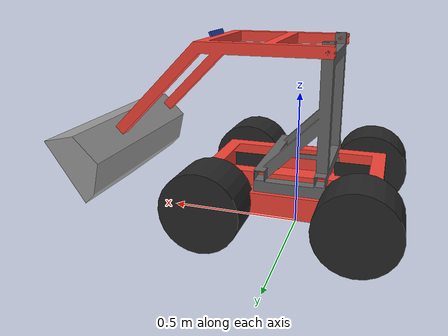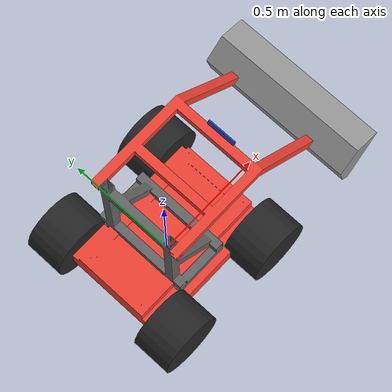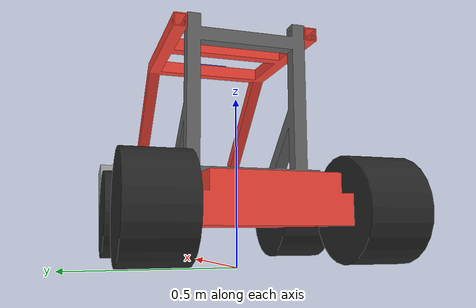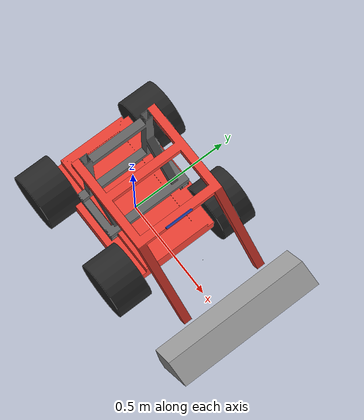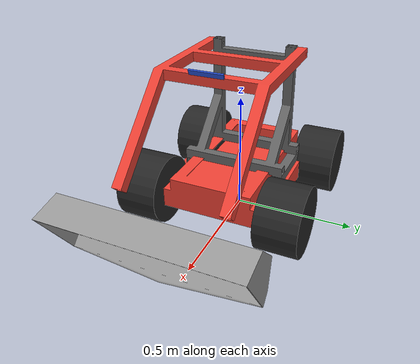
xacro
<?xml version="1.0"?>
<robot name="emcee" xmlns:xacro="http://www.ros.org/wiki/xacro">
  <xacro:property name="PI" value="3.1415926535897931"/>

  <xacro:property name="dummy_inertia" value="1e-09"/>

  <xacro:property name="mount_spacing" value="0.120"/>

  <material name="dark_grey"><color rgba="0.2 0.2 0.2 1.0"/></material>
  <material name="light_grey"><color rgba="0.4 0.4 0.4 1.0"/></material>
  <material name="stl"><color rgba="0.8 0.8 0.0 1.0"/></material>
  <material name="red"><color rgba="0.95 0.26 0.21 1.0"/></material>
  <material name="black"><color rgba="0.15 0.15 0.15 1.0"/></material>
  <material name="green"><color rgba="0 1 0 1"/></material>
  <material name="invisible"><color rgba="0 0 0 0"/></material>

  <xacro:property name="chassis_height" value="0.136"/>
  <xacro:property name="chassis_width" value="0.4731"/>
  <xacro:property name="chassis_length" value="0.627"/>

  <xacro:property name="sled_hoz_width" value="0.442"/>
  <xacro:property name="sled_hoz_length" value="0.245"/>
  <xacro:property name="sled_hoz_height" value="0.0405"/>

  <xacro:property name="sled_ver_width" value="0.350"/>
  <xacro:property name="sled_ver_length" value="0.0405"/>
  <xacro:property name="sled_ver_height" value="0.425"/>

  <xacro:property name="arm_upper_width" value="0.429"/>
  <xacro:property name="arm_upper_length" value="0.452"/>
  <xacro:property name="arm_upper_height" value="0.0405"/>

  <xacro:property name="arm_angle" value="2.356194490192345"/> <!-- 135 degrees -->

  <xacro:property name="arm_lower_width" value="0.429"/>
  <xacro:property name="arm_lower_length" value="0.440"/>
  <xacro:property name="arm_lower_height" value="0.0405"/>

  <!-- TODO: measure these -->
  <xacro:property name="wheel_base" value="0.503"/>
  <xacro:property name="wheel_track" value="0.575"/>
  <xacro:property name="wheel_radius" value="0.14"/>
  <xacro:property name="wheel_width" value="0.17"/>
  <!-- not sure about this one -->
  <xacro:property name="wheel_height" value="0.047625"/>

  <xacro:macro name="wheel" params="prefix reflect *joint_pose">
    <link name="${prefix}_wheel_link">
      <visual>
        <origin xyz="0 0 0" rpy="${PI/2} 0 0"/>
        <geometry>
          <cylinder radius="${wheel_radius}" length="${wheel_width}"/>
        </geometry>
        <material name="black"/>
      </visual>
      <collision>
        <origin xyz="0 0 0" rpy="${PI/2} 0 0"/>
        <geometry>
          <cylinder radius="${wheel_radius}" length="${wheel_width}"/>
        </geometry>
      </collision>
      <inertial>
        <origin xyz="0 0 0" rpy="0 0 0"/>
        <mass value="8.6"/>
        <!-- moment of inertia of a cylinder https://en.wikipedia.org/wiki/List_of_moments_of_inertia#List_of_3D_inertia_tensors -->
        <inertia ixx="0.0785782304" ixy="0" ixz="0" iyy="0.0785782304" iyz="0" izz="0.1051404359"/>
      </inertial>
    </link>

    <gazebo reference="${prefix}_wheel_link">
      <!-- TODO: set these constants. They are just taken from urdf_tutorial. 09 -->
      <mu1 value="5"/>
      <mu2 value="5"/>
      <material>Gazebo/DarkGrey</material>
    </gazebo>

    <joint name="${prefix}_wheel" type="continuous">
      <parent link="chassis"/>
      <child link="${prefix}_wheel_link"/>
      <xacro:insert_block name="joint_pose"/>
      <axis xyz="0 ${reflect} 0"/>
    </joint>

    <transmission name="${prefix}_wheel_trans">
      <type>transmission_interface/SimpleTransmission</type>
      <joint name="${prefix}_wheel">
        <hardwareInterface>VelocityJointInterface</hardwareInterface>
      </joint>
      <actuator name="${prefix}_actuator">
        <mechanicalReduction>1</mechanicalReduction>
      </actuator>
    </transmission>
  </xacro:macro>

  <link name="base_link"></link>
  <joint name="chassis_base_joint" type="fixed">
    <parent link="base_link"/>
    <child link="chassis"/>
    <origin xyz="0 0 ${(chassis_height/2)+wheel_radius-wheel_height}"/>
  </joint>

  <link name="chassis">
    <visual>
      <origin xyz="0 0 0"/>
      <geometry>
          <mesh filename="package://emcee_description/meshes/visual/chassis.dae"/>
      </geometry>
      <material name="red"/>
    </visual>
    <collision>
      <origin xyz="0 0 0"/>
      <geometry>
        <box size="${chassis_length} ${chassis_width} ${chassis_height}"/>
      </geometry>
    </collision>
    <inertial>
      <origin xyz="0 0 0" rpy="0 0 0"/>
      <mass value="3.05"/>
      <inertia ixx="0.28" ixy="0.00" ixz="0.00" iyy="0.42" iyz="0.00" izz="0.17"/>
    </inertial>
  </link>

  <xacro:wheel prefix="left_front" reflect="1">
    <origin xyz="${wheel_base/2} ${wheel_track/2} 0" rpy="0 0 0"/>
  </xacro:wheel>
  <xacro:wheel prefix="left_rear" reflect="1">
      <origin xyz="${-wheel_base/2} ${wheel_track/2} 0" rpy="0 0 0"/>
  </xacro:wheel>
  <xacro:wheel prefix="right_front" reflect="-1">
      <origin xyz="${wheel_base/2} ${-wheel_track/2} 0" rpy="${PI} 0 0"/>
  </xacro:wheel>
  <xacro:wheel prefix="right_rear" reflect="-1">
    <origin xyz="${-wheel_base/2} ${-wheel_track/2} 0" rpy="${PI} 0 0"/>
  </xacro:wheel>

  <link name="sled_hoz">
    <visual>
      <geometry>
          <mesh filename="package://emcee_description/meshes/visual/sled.dae"/>
      </geometry>
      <origin xyz="0 0 0" rpy="0 0 0"/>
      <material name="light_grey"/>
    </visual>
    <collision>
      <origin xyz="0 0 0"/>
      <geometry>
        <box size="${sled_hoz_length} ${sled_hoz_width} ${sled_hoz_height}"/>
      </geometry>
    </collision>
    <inertial>
      <origin xyz="0 0 0" rpy="0 0 0"/>
      <mass value="3.0"/>

      <!-- izz="-0.28" iyy="1.00" iyz="-0.96" ixx="0.96" ixy="0. -->
    <inertia ixx="0.08" ixy="0.00" ixz="-0.01" iyy="0.06" iyz="0.00" izz="0.04"/>
    </inertial>
  </link>

  <joint name="sled_joint" type="prismatic">
    <parent link="chassis"/>
    <child link="sled_hoz"/>
    <axis rpy="0 0 0" xyz="1 0 0"/>
    <dynamics damping="100" friction="1"/>
    <limit effort="1000" lower="${-(chassis_length/2)+(sled_hoz_length/2)}" upper="${(chassis_length/2)-(sled_hoz_length/2)}" velocity="0.1"/>
    <origin rpy="0 0 0" xyz="0 0 ${chassis_height/2 + sled_hoz_height/2}"/>
  </joint>

  <link name="sled_ver">
    <visual>
      <geometry>
        <box size="0.001 0.001 0.001"/>
      </geometry>
      <origin xyz="0 0 0" rpy="0 0 0"/>
      <material name="invisible"/>
    </visual>
    <collision>
      <origin xyz="0 0 0"/>
      <geometry>
        <box size="${sled_ver_length} ${sled_ver_width} ${sled_ver_height}"/>
      </geometry>
    </collision>
    <inertial>
      <origin xyz="0 0 0" rpy="0 0 0"/>
      <mass value="12.25"/>
      <inertia ixx="0.225942" ixy="-5.6e-5" ixz="0.041831" iyy="0.162776" iyz="4.5e-5" izz="0.312502"/>
    </inertial>
  </link>

  <joint name="sled_ver_joint" type="fixed">
    <parent link="sled_hoz"/>
    <child link="sled_ver"/>
    <origin rpy="0 0 0" xyz="${-sled_hoz_length/2 + sled_ver_length/2} 0 ${sled_ver_height/2 + sled_hoz_height/2}"/>
  </joint>

  <link name="arm_upper">
    <visual>
     <origin xyz="${arm_upper_length/2 - sled_ver_length/2} 0 0"/>
      <geometry>
          <mesh filename="package://emcee_description/meshes/visual/arms.dae"/>
      </geometry>
      <material name="red"/>
    </visual>
    <collision>
      <origin xyz="${arm_upper_length/2 - sled_ver_length/2} 0 0"/>
      <geometry>
        <box size="${arm_upper_length} ${arm_upper_width} ${arm_upper_height}"/>
      </geometry>
      <material name="red"/>
    </collision>

    <inertial>
      <origin xyz="0 0 0" rpy="0 0 0"/>
      <mass value="2.5"/>
      <inertia ixx="0.04" ixz="-0.02" ixy="0.00" izz="0.07" iyz="0.0" iyy="0.05" />
    </inertial>
  </link>

  <joint name="arm_joint" type="revolute">
    <parent link="sled_ver"/>
    <child link="arm_upper"/>
    <origin xyz="0 0 ${sled_ver_height/2}"/>
    <axis xyz="0 1 0"/>
    <limit lower="-0.8" upper="0.31" effort="1000000" velocity="0.1"/>
    <dynamics damping="0.1" friction="0"/>
  </joint>

  <link name="arm_lower">
    <visual>
     <origin xyz="0 0 0"/>
      <geometry>
        <box size="0.001 0.001 0.001"/>
      </geometry>
      <material name="invisible"/>
    </visual>
    <collision>
      <origin xyz="0 0 0"/>
      <geometry>
        <box size="${arm_lower_length} ${arm_lower_width} ${arm_lower_height}"/>
      </geometry>
      <material name="red"/>
    </collision>
    <inertial>
      <origin xyz="0.439315 0.004673 -0.035609" rpy="0 0 0"/>
      <mass value="0.0"/>
      <inertia ixx="${dummy_inertia}" ixy="0" ixz="0" iyy="${dummy_inertia}" iyz="0" izz="${dummy_inertia}" />
    </inertial>
  </link>

  <joint name="arm_lower_joint" type="fixed">
    <parent link="arm_upper"/>
    <child link="arm_lower"/>
    <origin xyz="${arm_upper_length/2 + arm_lower_length/sqrt(2) + sled_ver_length} 0 ${-arm_lower_length/sqrt(2)/2}" rpy="0 ${PI - arm_angle} 0"/>
  </joint>

<link name="bucket">
    <visual>
      <origin xyz="0.09 0 0.0"/>
      <geometry>
        <mesh filename="package://emcee_description/meshes/visual/bucket.dae"/>
        />
      </geometry>
    </visual>
    <collision>
      <origin xyz="0.09 0 0.0"/>
      <geometry>
          <mesh filename="package://emcee_description/meshes/visual/bucket.dae"/>
      </geometry>
    </collision>
    <inertial>
      <origin xyz="0 0 0" rpy="0 0 0"/>
      <mass value="2.45"/>
      <inertia ixx="0.19" ixy="0.0" ixz="0.00" iyy="0.03" iyz="0.00" izz="0.17"/>
    </inertial>
  </link>

  <joint name="bucket_joint" type="revolute">
    <parent link="arm_lower"/>
    <child link="bucket"/>
    <axis xyz="0 1 0"/>
    <origin xyz="${arm_lower_length/sqrt(2) - 0.07} 0 -0.03"/>
    <limit lower="${-1.5}" upper="${0.7}" effort="100000" velocity="1"/>
    <dynamics damping="0.1" friction="0"/>
  </joint>

  <link name="zed_link">
    <visual>
      <geometry>
        <box size="0.007 0.130 0.020"/>
      </geometry>
    </visual>
    <collision>
      <geometry>
        <box size="0.007 0.130 0.020"/>
      </geometry>
    </collision>
    <inertial>
      <origin xyz="0 0 0" rpy="0 0 0"/>
      <mass value="0.1"/>
      <inertia ixx="${dummy_inertia}" ixy="0" ixz="0" iyy="${dummy_inertia}" iyz="0" izz="${dummy_inertia}"/>
    </inertial>
  </link>
  <joint name="zed_joint" type="fixed">
    <parent link="arm_lower"/>
    <child link="zed_link"/>
    <origin rpy="0 ${-pi/8} 0" xyz="${-arm_lower_length/(1.35*sqrt(2))} 0.0 0.0"/>
  </joint>

  <link name="imu_link">
    <inertial>
      <mass value="0.001"/>
      <origin xyz="0 0 0" rpy="0 0 0"/>
      <inertia ixx="${dummy_inertia}" ixy="0.0" ixz="0.0" iyy="${dummy_inertia}" iyz="0.0" izz="${dummy_inertia}"/>
    </inertial>
  </link>
  <joint name="imu_joint" type="fixed">
    <parent link="chassis"/>
    <child link="imu_link"/>
  </joint>

  <!-- Bring in simulation configuration for Gazebo. -->
  <xacro:include filename="emcee.gazebo"/>

  <transmission name="sled_hoz_trans">
    <type>transmission_interface/SimpleTransmission</type>
    <joint name="sled_joint">
      <hardwareInterface>EffortJointInterface</hardwareInterface>
    </joint>
    <actuator name="sled_hoz_linear_actuator">
      <hardwareInterface>EffortJointInterface</hardwareInterface>
      <mechanicalReduction>1</mechanicalReduction>
    </actuator>
  </transmission>

  <transmission name="arm_trans">
    <type>transmission_interface/SimpleTransmission</type>
    <joint name="arm_joint">
      <hardwareInterface>EffortJointInterface</hardwareInterface>
    </joint>
    <actuator name="arm_linear_actuators">
      <hardwareInterface>EffortJointInterface</hardwareInterface>
      <mechanicalReduction>1</mechanicalReduction>
    </actuator>
  </transmission>

  <transmission name="bucket_trans">
    <type>transmission_interface/SimpleTransmission</type>
    <joint name="bucket_joint">
      <hardwareInterface>EffortJointInterface</hardwareInterface>
    </joint>
    <actuator name="bucket_linear_actuator">
      <hardwareInterface>EffortJointInterface</hardwareInterface>
      <mechanicalReduction>1</mechanicalReduction>
    </actuator>
  </transmission>

</robot>
